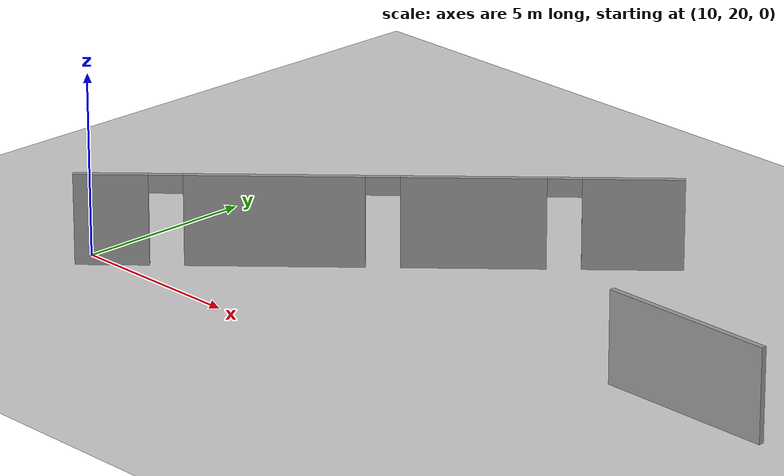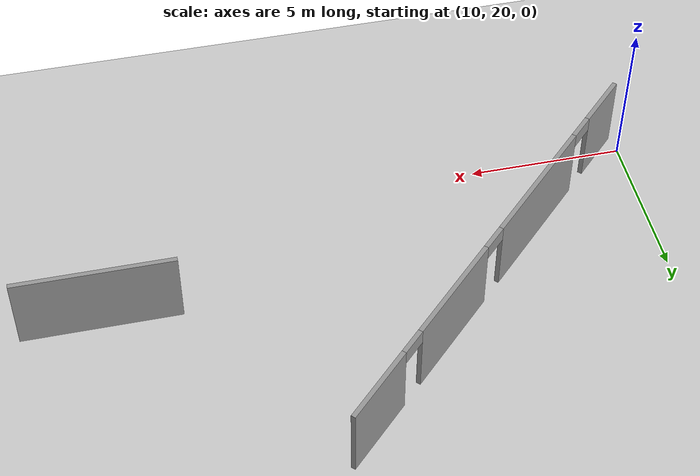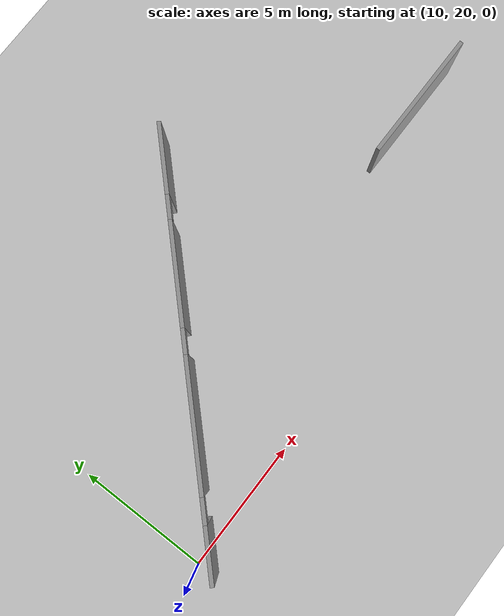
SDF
<sdf version="1.7">
 <world name="default">
  <model name="ground_plane">
   <static>1</static>
   <link name="link">
    <collision name="collision">
     <geometry><plane><normal>0 0 1</normal><size>100 100</size></plane></geometry>
     <surface>
      <contact><collide_bitmask>65535</collide_bitmask></contact>
      <friction><ode><mu>100</mu><mu2>50</mu2></ode></friction>
     </surface>
    </collision>
    <visual name="visual">
     <cast_shadows>0</cast_shadows>
     <geometry><plane><normal>0 0 1</normal><size>100 100</size></plane></geometry>
     <material>
      <script><uri>file://media/materials/scripts/gazebo.material</uri><name>Gazebo/Grey</name></script>
     </material>
    </visual>
   </link>
  </model>
  <model name="Level_1_with_doors">
   <link name="Wall_36">
    <pose>11.0278 2.45063 0 0 -0 0.785398</pose>
    <visual name="Wall_36_Visual_2">
     <pose>2.43912 0 1.25 0 -0 0</pose>
     <geometry><box><size>3.77284 0.15 2.5</size></box></geometry>
     <material>
      <script><uri>file://media/materials/scripts/gazebo.material</uri><name>Gazebo/Grey</name></script>
      <ambient>1 1 1 1</ambient>
      <shader type="pixel"/>
     </material>
     <meta><layer>0</layer></meta>
    </visual>
    <visual name="Wall_36_Visual_1">
     <pose>-2.69069 0 1.25 0 -0 0</pose>
     <geometry><box><size>4.68677 0.15 2.5</size></box></geometry>
     <material>
      <script><uri>file://media/materials/scripts/gazebo.material</uri><name>Gazebo/Grey</name></script>
      <ambient>1 1 1 1</ambient>
      <shader type="pixel"/>
     </material>
     <meta><layer>0</layer></meta>
    </visual>
    <visual name="Wall_36_Visual_4">
     <pose>-5.48407 0 2.25 0 -0 0</pose>
     <geometry><box><size>0.9 0.15 0.5</size></box></geometry>
     <material>
      <script><uri>file://media/materials/scripts/gazebo.material</uri><name>Gazebo/Grey</name></script>
      <ambient>1 1 1 1</ambient>
      <shader type="pixel"/>
     </material>
     <meta><layer>0</layer></meta>
    </visual>
    <visual name="Wall_36_Visual_3">
     <pose>6.55027 0 1.25 0 -0 0</pose>
     <geometry><box><size>2.64946 0.15 2.5</size></box></geometry>
     <material>
      <script><uri>file://media/materials/scripts/gazebo.material</uri><name>Gazebo/Grey</name></script>
      <ambient>1 1 1 1</ambient>
      <shader type="pixel"/>
     </material>
     <meta><layer>0</layer></meta>
    </visual>
    <visual name="Wall_36_Visual_5">
     <pose>0.102698 0 2.25 0 -0 0</pose>
     <geometry><box><size>0.9 0.15 0.5</size></box></geometry>
     <material>
      <script><uri>file://media/materials/scripts/gazebo.material</uri><name>Gazebo/Grey</name></script>
      <ambient>1 1 1 1</ambient>
      <shader type="pixel"/>
     </material>
     <meta><layer>0</layer></meta>
    </visual>
    <visual name="Wall_36_Visual_6">
     <pose>4.77554 0 2.25 0 -0 0</pose>
     <geometry><box><size>0.9 0.15 0.5</size></box></geometry>
     <material>
      <script><uri>file://media/materials/scripts/gazebo.material</uri><name>Gazebo/Grey</name></script>
      <ambient>1 1 1 1</ambient>
      <shader type="pixel"/>
     </material>
     <meta><layer>0</layer></meta>
    </visual>
    <visual name="Wall_36_Visual_0">
     <pose>-6.90454 0 1.25 0 -0 0</pose>
     <geometry><box><size>1.94093 0.15 2.5</size></box></geometry>
     <material>
      <script><uri>file://media/materials/scripts/gazebo.material</uri><name>Gazebo/Grey</name></script>
      <ambient>1 1 1 1</ambient>
      <shader type="pixel"/>
     </material>
     <meta><layer>0</layer></meta>
    </visual>
    <collision name="Wall_36_Collision_2">
     <pose>2.43912 0 1.25 0 -0 0</pose>
     <geometry><box><size>3.77284 0.15 2.5</size></box></geometry>
     <surface>
      <friction>
       <ode><mu>1</mu><mu2>1</mu2><fdir1>0 0 0</fdir1><slip1>0</slip1><slip2>0</slip2></ode>
       <torsional>
        <coefficient>1</coefficient>
        <patch_radius>0</patch_radius>
        <surface_radius>0</surface_radius>
        <use_patch_radius>1</use_patch_radius>
        <ode><slip>0</slip></ode>
       </torsional>
      </friction>
      <bounce><restitution_coefficient>0</restitution_coefficient><threshold>1e+06</threshold></bounce>
      <contact>
       <collide_without_contact>0</collide_without_contact>
       <collide_without_contact_bitmask>1</collide_without_contact_bitmask>
       <collide_bitmask>1</collide_bitmask>
       <ode>
        <soft_cfm>0</soft_cfm>
        <soft_erp>0.2</soft_erp>
        <kp>1e+13</kp>
        <kd>1</kd>
        <max_vel>0.01</max_vel>
        <min_depth>0</min_depth>
       </ode>
       <bullet>
        <split_impulse>1</split_impulse>
        <split_impulse_penetration_threshold>-0.01</split_impulse_penetration_threshold>
        <soft_cfm>0</soft_cfm>
        <soft_erp>0.2</soft_erp>
        <kp>1e+13</kp>
        <kd>1</kd>
       </bullet>
      </contact>
     </surface>
    </collision>
    <collision name="Wall_36_Collision_0">
     <pose>-6.90454 0 1.25 0 -0 0</pose>
     <geometry><box><size>1.94093 0.15 2.5</size></box></geometry>
     <surface>
      <friction>
       <ode><mu>1</mu><mu2>1</mu2><fdir1>0 0 0</fdir1><slip1>0</slip1><slip2>0</slip2></ode>
       <torsional>
        <coefficient>1</coefficient>
        <patch_radius>0</patch_radius>
        <surface_radius>0</surface_radius>
        <use_patch_radius>1</use_patch_radius>
        <ode><slip>0</slip></ode>
       </torsional>
      </friction>
      <bounce><restitution_coefficient>0</restitution_coefficient><threshold>1e+06</threshold></bounce>
      <contact>
       <collide_without_contact>0</collide_without_contact>
       <collide_without_contact_bitmask>1</collide_without_contact_bitmask>
       <collide_bitmask>1</collide_bitmask>
       <ode>
        <soft_cfm>0</soft_cfm>
        <soft_erp>0.2</soft_erp>
        <kp>1e+13</kp>
        <kd>1</kd>
        <max_vel>0.01</max_vel>
        <min_depth>0</min_depth>
       </ode>
       <bullet>
        <split_impulse>1</split_impulse>
        <split_impulse_penetration_threshold>-0.01</split_impulse_penetration_threshold>
        <soft_cfm>0</soft_cfm>
        <soft_erp>0.2</soft_erp>
        <kp>1e+13</kp>
        <kd>1</kd>
       </bullet>
      </contact>
     </surface>
    </collision>
    <collision name="Wall_36_Collision_1">
     <pose>-2.69069 0 1.25 0 -0 0</pose>
     <geometry><box><size>4.68677 0.15 2.5</size></box></geometry>
     <surface>
      <friction>
       <ode><mu>1</mu><mu2>1</mu2><fdir1>0 0 0</fdir1><slip1>0</slip1><slip2>0</slip2></ode>
       <torsional>
        <coefficient>1</coefficient>
        <patch_radius>0</patch_radius>
        <surface_radius>0</surface_radius>
        <use_patch_radius>1</use_patch_radius>
        <ode><slip>0</slip></ode>
       </torsional>
      </friction>
      <bounce><restitution_coefficient>0</restitution_coefficient><threshold>1e+06</threshold></bounce>
      <contact>
       <collide_without_contact>0</collide_without_contact>
       <collide_without_contact_bitmask>1</collide_without_contact_bitmask>
       <collide_bitmask>1</collide_bitmask>
       <ode>
        <soft_cfm>0</soft_cfm>
        <soft_erp>0.2</soft_erp>
        <kp>1e+13</kp>
        <kd>1</kd>
        <max_vel>0.01</max_vel>
        <min_depth>0</min_depth>
       </ode>
       <bullet>
        <split_impulse>1</split_impulse>
        <split_impulse_penetration_threshold>-0.01</split_impulse_penetration_threshold>
        <soft_cfm>0</soft_cfm>
        <soft_erp>0.2</soft_erp>
        <kp>1e+13</kp>
        <kd>1</kd>
       </bullet>
      </contact>
     </surface>
    </collision>
    <collision name="Wall_36_Collision_5">
     <pose>0.102698 0 2.25 0 -0 0</pose>
     <geometry><box><size>0.9 0.15 0.5</size></box></geometry>
     <surface>
      <friction>
       <ode><mu>1</mu><mu2>1</mu2><fdir1>0 0 0</fdir1><slip1>0</slip1><slip2>0</slip2></ode>
       <torsional>
        <coefficient>1</coefficient>
        <patch_radius>0</patch_radius>
        <surface_radius>0</surface_radius>
        <use_patch_radius>1</use_patch_radius>
        <ode><slip>0</slip></ode>
       </torsional>
      </friction>
      <bounce><restitution_coefficient>0</restitution_coefficient><threshold>1e+06</threshold></bounce>
      <contact>
       <collide_without_contact>0</collide_without_contact>
       <collide_without_contact_bitmask>1</collide_without_contact_bitmask>
       <collide_bitmask>1</collide_bitmask>
       <ode>
        <soft_cfm>0</soft_cfm>
        <soft_erp>0.2</soft_erp>
        <kp>1e+13</kp>
        <kd>1</kd>
        <max_vel>0.01</max_vel>
        <min_depth>0</min_depth>
       </ode>
       <bullet>
        <split_impulse>1</split_impulse>
        <split_impulse_penetration_threshold>-0.01</split_impulse_penetration_threshold>
        <soft_cfm>0</soft_cfm>
        <soft_erp>0.2</soft_erp>
        <kp>1e+13</kp>
        <kd>1</kd>
       </bullet>
      </contact>
     </surface>
    </collision>
    <collision name="Wall_36_Collision_6">
     <pose>4.77554 0 2.25 0 -0 0</pose>
     <geometry><box><size>0.9 0.15 0.5</size></box></geometry>
     <surface>
      <friction>
       <ode><mu>1</mu><mu2>1</mu2><fdir1>0 0 0</fdir1><slip1>0</slip1><slip2>0</slip2></ode>
       <torsional>
        <coefficient>1</coefficient>
        <patch_radius>0</patch_radius>
        <surface_radius>0</surface_radius>
        <use_patch_radius>1</use_patch_radius>
        <ode><slip>0</slip></ode>
       </torsional>
      </friction>
      <bounce><restitution_coefficient>0</restitution_coefficient><threshold>1e+06</threshold></bounce>
      <contact>
       <collide_without_contact>0</collide_without_contact>
       <collide_without_contact_bitmask>1</collide_without_contact_bitmask>
       <collide_bitmask>1</collide_bitmask>
       <ode>
        <soft_cfm>0</soft_cfm>
        <soft_erp>0.2</soft_erp>
        <kp>1e+13</kp>
        <kd>1</kd>
        <max_vel>0.01</max_vel>
        <min_depth>0</min_depth>
       </ode>
       <bullet>
        <split_impulse>1</split_impulse>
        <split_impulse_penetration_threshold>-0.01</split_impulse_penetration_threshold>
        <soft_cfm>0</soft_cfm>
        <soft_erp>0.2</soft_erp>
        <kp>1e+13</kp>
        <kd>1</kd>
       </bullet>
      </contact>
     </surface>
    </collision>
    <collision name="Wall_36_Collision_3">
     <pose>6.55027 0 1.25 0 -0 0</pose>
     <geometry><box><size>2.64946 0.15 2.5</size></box></geometry>
     <surface>
      <friction>
       <ode><mu>1</mu><mu2>1</mu2><fdir1>0 0 0</fdir1><slip1>0</slip1><slip2>0</slip2></ode>
       <torsional>
        <coefficient>1</coefficient>
        <patch_radius>0</patch_radius>
        <surface_radius>0</surface_radius>
        <use_patch_radius>1</use_patch_radius>
        <ode><slip>0</slip></ode>
       </torsional>
      </friction>
      <bounce><restitution_coefficient>0</restitution_coefficient><threshold>1e+06</threshold></bounce>
      <contact>
       <collide_without_contact>0</collide_without_contact>
       <collide_without_contact_bitmask>1</collide_without_contact_bitmask>
       <collide_bitmask>1</collide_bitmask>
       <ode>
        <soft_cfm>0</soft_cfm>
        <soft_erp>0.2</soft_erp>
        <kp>1e+13</kp>
        <kd>1</kd>
        <max_vel>0.01</max_vel>
        <min_depth>0</min_depth>
       </ode>
       <bullet>
        <split_impulse>1</split_impulse>
        <split_impulse_penetration_threshold>-0.01</split_impulse_penetration_threshold>
        <soft_cfm>0</soft_cfm>
        <soft_erp>0.2</soft_erp>
        <kp>1e+13</kp>
        <kd>1</kd>
       </bullet>
      </contact>
     </surface>
    </collision>
    <collision name="Wall_36_Collision_4">
     <pose>-5.48407 0 2.25 0 -0 0</pose>
     <geometry><box><size>0.9 0.15 0.5</size></box></geometry>
     <surface>
      <friction>
       <ode><mu>1</mu><mu2>1</mu2><fdir1>0 0 0</fdir1><slip1>0</slip1><slip2>0</slip2></ode>
       <torsional>
        <coefficient>1</coefficient>
        <patch_radius>0</patch_radius>
        <surface_radius>0</surface_radius>
        <use_patch_radius>1</use_patch_radius>
        <ode><slip>0</slip></ode>
       </torsional>
      </friction>
      <bounce><restitution_coefficient>0</restitution_coefficient><threshold>1e+06</threshold></bounce>
      <contact>
       <collide_without_contact>0</collide_without_contact>
       <collide_without_contact_bitmask>1</collide_without_contact_bitmask>
       <collide_bitmask>1</collide_bitmask>
       <ode>
        <soft_cfm>0</soft_cfm>
        <soft_erp>0.2</soft_erp>
        <kp>1e+13</kp>
        <kd>1</kd>
        <max_vel>0.01</max_vel>
        <min_depth>0</min_depth>
       </ode>
       <bullet>
        <split_impulse>1</split_impulse>
        <split_impulse_penetration_threshold>-0.01</split_impulse_penetration_threshold>
        <soft_cfm>0</soft_cfm>
        <soft_erp>0.2</soft_erp>
        <kp>1e+13</kp>
        <kd>1</kd>
       </bullet>
      </contact>
     </surface>
    </collision>
   </link>
   <link name="Wall_67">
    <pose>22.9486 1.35654 0 0 -0 0</pose>
    <visual name="Wall_67_Visual">
     <pose>0 0 1.25 0 -0 0</pose>
     <geometry><box><size>5 0.15 2.5</size></box></geometry>
     <material>
      <script><uri>file://media/materials/scripts/gazebo.material</uri><name>Gazebo/Grey</name></script>
      <ambient>1 1 1 1</ambient>
      <shader type="pixel"/>
     </material>
     <meta><layer>0</layer></meta>
    </visual>
    <collision name="Wall_67_Collision">
     <pose>0 0 1.25 0 -0 0</pose>
     <geometry><box><size>5 0.15 2.5</size></box></geometry>
     <surface>
      <friction>
       <ode><mu>1</mu><mu2>1</mu2><fdir1>0 0 0</fdir1><slip1>0</slip1><slip2>0</slip2></ode>
       <torsional>
        <coefficient>1</coefficient>
        <patch_radius>0</patch_radius>
        <surface_radius>0</surface_radius>
        <use_patch_radius>1</use_patch_radius>
        <ode><slip>0</slip></ode>
       </torsional>
      </friction>
      <bounce><restitution_coefficient>0</restitution_coefficient><threshold>1e+06</threshold></bounce>
      <contact>
       <collide_without_contact>0</collide_without_contact>
       <collide_without_contact_bitmask>1</collide_without_contact_bitmask>
       <collide_bitmask>1</collide_bitmask>
       <ode>
        <soft_cfm>0</soft_cfm>
        <soft_erp>0.2</soft_erp>
        <kp>1e+13</kp>
        <kd>1</kd>
        <max_vel>0.01</max_vel>
        <min_depth>0</min_depth>
       </ode>
       <bullet>
        <split_impulse>1</split_impulse>
        <split_impulse_penetration_threshold>-0.01</split_impulse_penetration_threshold>
        <soft_cfm>0</soft_cfm>
        <soft_erp>0.2</soft_erp>
        <kp>1e+13</kp>
        <kd>1</kd>
       </bullet>
      </contact>
     </surface>
    </collision>
   </link>
   <static>1</static>
   <pose>4.6984 22.4203 0 0 -0 0</pose>
  </model>
 </world>
</sdf>
